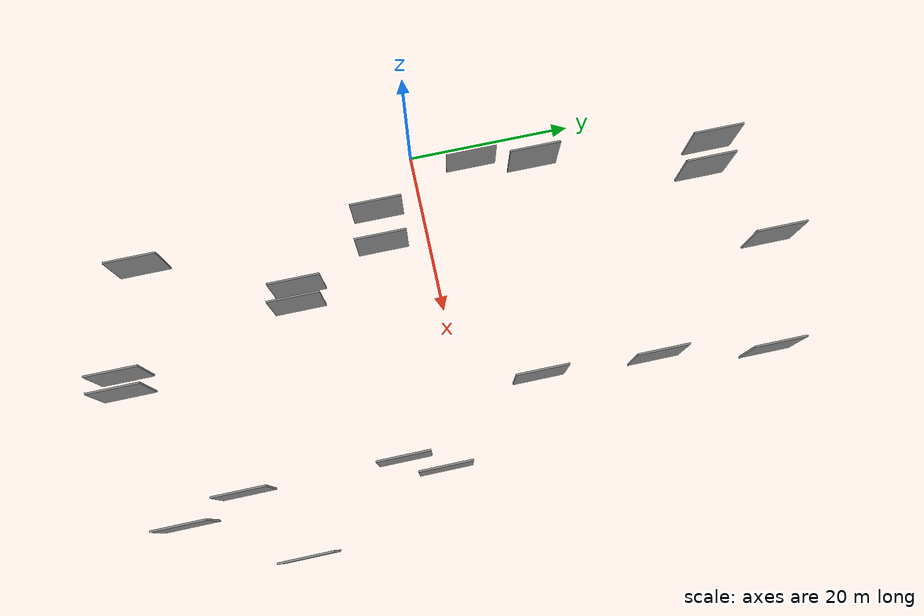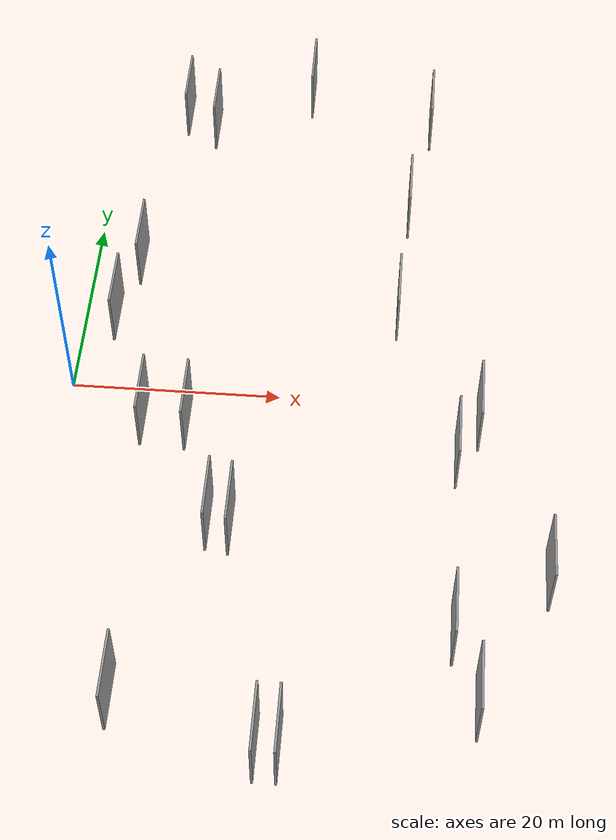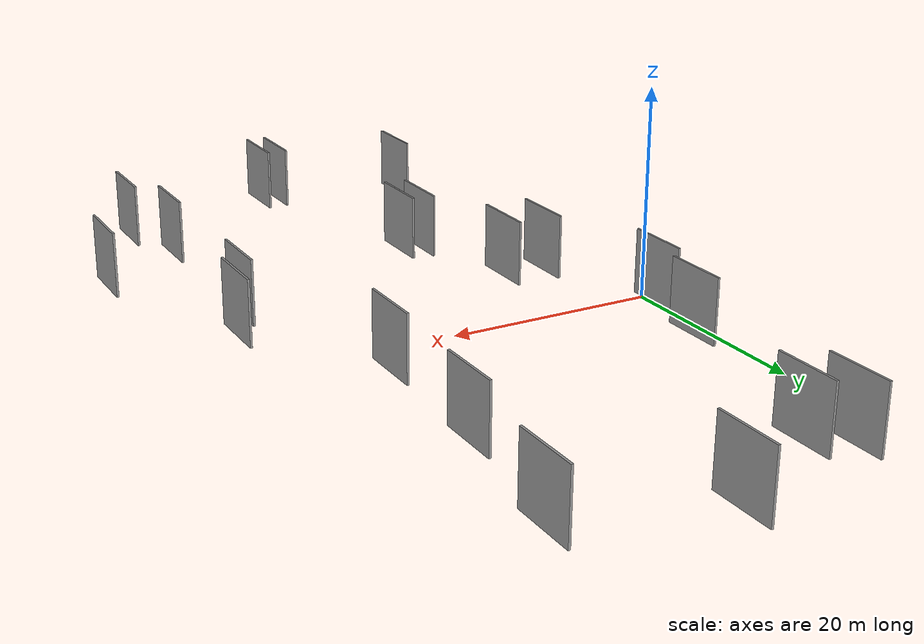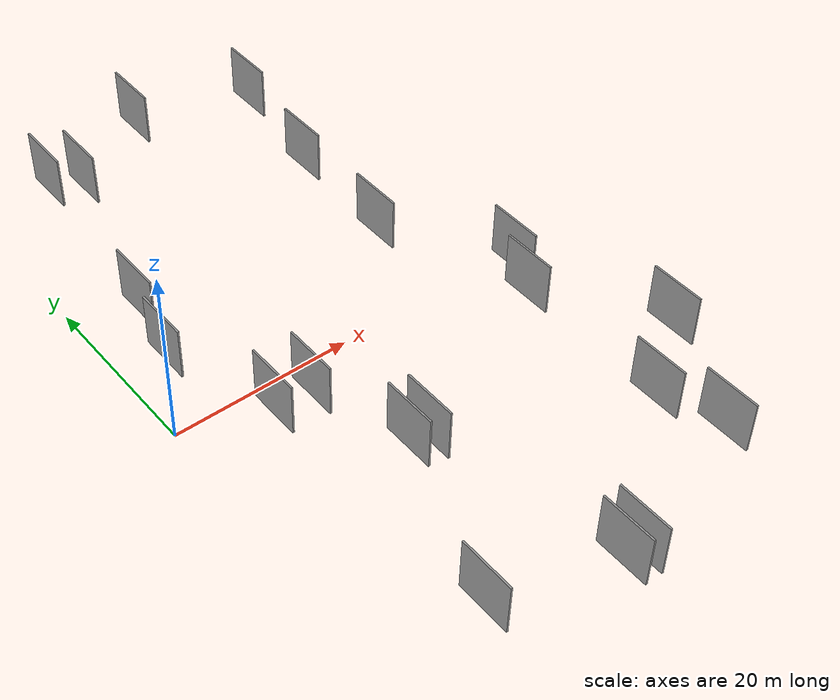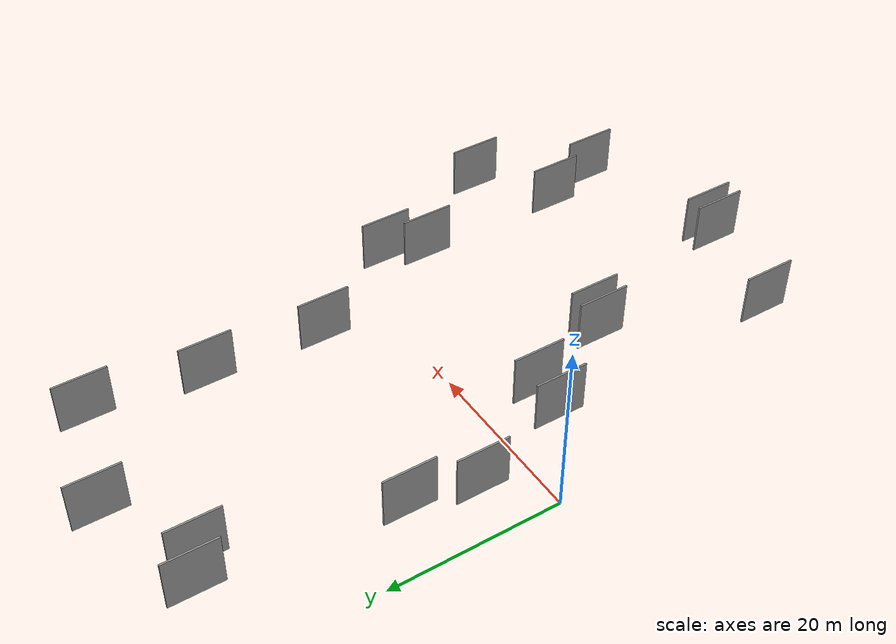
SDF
<sdf version="1.6">
 <world name="default">
  <scene>
   <sky><clouds><speed>12</speed></clouds></sky>
   <ambient>0.4 0.4 0.4 1</ambient>
   <background>0.7 0.7 0.7 1</background>
   <shadows>1</shadows>
  </scene>
  <gravity>0 0 -9.8066</gravity>
  <magnetic_field>6e-06 2.3e-05 -4.2e-05</magnetic_field>
  <physics default="0" name="default_physics" type="ode">
   <ode>
    <solver>
     <type>quick</type>
     <iters>10</iters>
     <sor>1.0</sor>
     <use_dynamic_moi_rescaling>0</use_dynamic_moi_rescaling>
    </solver>
    <constraints>
     <cfm>0</cfm>
     <erp>0.2</erp>
     <contact_max_correcting_vel>100</contact_max_correcting_vel>
     <contact_surface_layer>0.001</contact_surface_layer>
    </constraints>
   </ode>
   <max_step_size>0.004</max_step_size>
   <real_time_factor>1</real_time_factor>
   <real_time_update_rate>250</real_time_update_rate>
  </physics>
  <light name="sun" type="directional">
   <pose>0 0 10 0 0 0</pose>
   <diffuse>0.8 0.8 0.8 1</diffuse>
   <specular>0.2 0.2 0.2 1</specular>
   <attenuation>
    <range>1000</range>
    <constant>0.9</constant>
    <linear>0.01</linear>
    <quadratic>0.001</quadratic>
   </attenuation>
   <direction>-0.5 0.1 -0.9</direction>
  </light>
  <model name="grey_wall_1">
   <static>1</static>
   <pose>44.8680 -19.7840 2.5 0.000000 0.000000 1.570796</pose>
   <link name="link">
    <pose>0 0 3.00 0 0 0</pose>
    <collision name="collision"><geometry><box><size>6.00 0.2 6.00</size></box></geometry></collision>
    <visual name="visual">
     <cast_shadows>0</cast_shadows>
     <geometry><box><size>6.00 0.2 6.00</size></box></geometry>
     <material>
      <script>
       <uri>model://grey_wall/materials/scripts</uri>
       <uri>model://grey_wall/materials/textures</uri>
       <name>vrc/grey_wall</name>
      </script>
     </material>
    </visual>
   </link>
  </model>
  <model name="grey_wall_2">
   <static>1</static>
   <pose>23.0405 -37.1737 2.5 0.000000 0.000000 1.570796</pose>
   <link name="link">
    <pose>0 0 3.00 0 0 0</pose>
    <collision name="collision"><geometry><box><size>6.00 0.2 6.00</size></box></geometry></collision>
    <visual name="visual">
     <cast_shadows>0</cast_shadows>
     <geometry><box><size>6.00 0.2 6.00</size></box></geometry>
     <material>
      <script>
       <uri>model://grey_wall/materials/scripts</uri>
       <uri>model://grey_wall/materials/textures</uri>
       <name>vrc/grey_wall</name>
      </script>
     </material>
    </visual>
   </link>
  </model>
  <model name="grey_wall_3">
   <static>1</static>
   <pose>8.7459 -33.5266 2.5 0.000000 0.000000 1.570796</pose>
   <link name="link">
    <pose>0 0 3.00 0 0 0</pose>
    <collision name="collision"><geometry><box><size>6.00 0.2 6.00</size></box></geometry></collision>
    <visual name="visual">
     <cast_shadows>0</cast_shadows>
     <geometry><box><size>6.00 0.2 6.00</size></box></geometry>
     <material>
      <script>
       <uri>model://grey_wall/materials/scripts</uri>
       <uri>model://grey_wall/materials/textures</uri>
       <name>vrc/grey_wall</name>
      </script>
     </material>
    </visual>
   </link>
  </model>
  <model name="grey_wall_4">
   <static>1</static>
   <pose>36.7471 -25.5950 2.5 0.000000 0.000000 1.570796</pose>
   <link name="link">
    <pose>0 0 3.00 0 0 0</pose>
    <collision name="collision"><geometry><box><size>6.00 0.2 6.00</size></box></geometry></collision>
    <visual name="visual">
     <cast_shadows>0</cast_shadows>
     <geometry><box><size>6.00 0.2 6.00</size></box></geometry>
     <material>
      <script>
       <uri>model://grey_wall/materials/scripts</uri>
       <uri>model://grey_wall/materials/textures</uri>
       <name>vrc/grey_wall</name>
      </script>
     </material>
    </visual>
   </link>
  </model>
  <model name="grey_wall_5">
   <static>1</static>
   <pose>17.0178 -16.3620 2.5 0.000000 0.000000 1.570796</pose>
   <link name="link">
    <pose>0 0 3.00 0 0 0</pose>
    <collision name="collision"><geometry><box><size>6.00 0.2 6.00</size></box></geometry></collision>
    <visual name="visual">
     <cast_shadows>0</cast_shadows>
     <geometry><box><size>6.00 0.2 6.00</size></box></geometry>
     <material>
      <script>
       <uri>model://grey_wall/materials/scripts</uri>
       <uri>model://grey_wall/materials/textures</uri>
       <name>vrc/grey_wall</name>
      </script>
     </material>
    </visual>
   </link>
  </model>
  <model name="grey_wall_6">
   <static>1</static>
   <pose>7.4429 35.3825 2.5 0.000000 0.000000 1.570796</pose>
   <link name="link">
    <pose>0 0 3.00 0 0 0</pose>
    <collision name="collision"><geometry><box><size>6.00 0.2 6.00</size></box></geometry></collision>
    <visual name="visual">
     <cast_shadows>0</cast_shadows>
     <geometry><box><size>6.00 0.2 6.00</size></box></geometry>
     <material>
      <script>
       <uri>model://grey_wall/materials/scripts</uri>
       <uri>model://grey_wall/materials/textures</uri>
       <name>vrc/grey_wall</name>
      </script>
     </material>
    </visual>
   </link>
  </model>
  <model name="grey_wall_7">
   <static>1</static>
   <pose>11.8801 -5.5077 2.5 0.000000 0.000000 1.570796</pose>
   <link name="link">
    <pose>0 0 3.00 0 0 0</pose>
    <collision name="collision"><geometry><box><size>6.00 0.2 6.00</size></box></geometry></collision>
    <visual name="visual">
     <cast_shadows>0</cast_shadows>
     <geometry><box><size>6.00 0.2 6.00</size></box></geometry>
     <material>
      <script>
       <uri>model://grey_wall/materials/scripts</uri>
       <uri>model://grey_wall/materials/textures</uri>
       <name>vrc/grey_wall</name>
      </script>
     </material>
    </visual>
   </link>
  </model>
  <model name="grey_wall_8">
   <static>1</static>
   <pose>5.1697 14.0634 2.5 0.000000 0.000000 1.570796</pose>
   <link name="link">
    <pose>0 0 3.00 0 0 0</pose>
    <collision name="collision"><geometry><box><size>6.00 0.2 6.00</size></box></geometry></collision>
    <visual name="visual">
     <cast_shadows>0</cast_shadows>
     <geometry><box><size>6.00 0.2 6.00</size></box></geometry>
     <material>
      <script>
       <uri>model://grey_wall/materials/scripts</uri>
       <uri>model://grey_wall/materials/textures</uri>
       <name>vrc/grey_wall</name>
      </script>
     </material>
    </visual>
   </link>
  </model>
  <model name="grey_wall_9">
   <static>1</static>
   <pose>7.7585 -5.2810 2.5 0.000000 0.000000 1.570796</pose>
   <link name="link">
    <pose>0 0 3.00 0 0 0</pose>
    <collision name="collision"><geometry><box><size>6.00 0.2 6.00</size></box></geometry></collision>
    <visual name="visual">
     <cast_shadows>0</cast_shadows>
     <geometry><box><size>6.00 0.2 6.00</size></box></geometry>
     <material>
      <script>
       <uri>model://grey_wall/materials/scripts</uri>
       <uri>model://grey_wall/materials/textures</uri>
       <name>vrc/grey_wall</name>
      </script>
     </material>
    </visual>
   </link>
  </model>
  <model name="grey_wall_10">
   <static>1</static>
   <pose>38.8941 -32.2576 2.5 0.000000 0.000000 1.570796</pose>
   <link name="link">
    <pose>0 0 3.00 0 0 0</pose>
    <collision name="collision"><geometry><box><size>6.00 0.2 6.00</size></box></geometry></collision>
    <visual name="visual">
     <cast_shadows>0</cast_shadows>
     <geometry><box><size>6.00 0.2 6.00</size></box></geometry>
     <material>
      <script>
       <uri>model://grey_wall/materials/scripts</uri>
       <uri>model://grey_wall/materials/textures</uri>
       <name>vrc/grey_wall</name>
      </script>
     </material>
    </visual>
   </link>
  </model>
  <model name="grey_wall_11">
   <static>1</static>
   <pose>36.7300 -7.8213 2.5 0.000000 0.000000 1.570796</pose>
   <link name="link">
    <pose>0 0 3.00 0 0 0</pose>
    <collision name="collision"><geometry><box><size>6.00 0.2 6.00</size></box></geometry></collision>
    <visual name="visual">
     <cast_shadows>0</cast_shadows>
     <geometry><box><size>6.00 0.2 6.00</size></box></geometry>
     <material>
      <script>
       <uri>model://grey_wall/materials/scripts</uri>
       <uri>model://grey_wall/materials/textures</uri>
       <name>vrc/grey_wall</name>
      </script>
     </material>
    </visual>
   </link>
  </model>
  <model name="grey_wall_12">
   <static>1</static>
   <pose>30.7591 8.8568 2.5 0.000000 0.000000 1.570796</pose>
   <link name="link">
    <pose>0 0 3.00 0 0 0</pose>
    <collision name="collision"><geometry><box><size>6.00 0.2 6.00</size></box></geometry></collision>
    <visual name="visual">
     <cast_shadows>0</cast_shadows>
     <geometry><box><size>6.00 0.2 6.00</size></box></geometry>
     <material>
      <script>
       <uri>model://grey_wall/materials/scripts</uri>
       <uri>model://grey_wall/materials/textures</uri>
       <name>vrc/grey_wall</name>
      </script>
     </material>
    </visual>
   </link>
  </model>
  <model name="grey_wall_13">
   <static>1</static>
   <pose>3.6218 6.8292 2.5 0.000000 0.000000 1.570796</pose>
   <link name="link">
    <pose>0 0 3.00 0 0 0</pose>
    <collision name="collision"><geometry><box><size>6.00 0.2 6.00</size></box></geometry></collision>
    <visual name="visual">
     <cast_shadows>0</cast_shadows>
     <geometry><box><size>6.00 0.2 6.00</size></box></geometry>
     <material>
      <script>
       <uri>model://grey_wall/materials/scripts</uri>
       <uri>model://grey_wall/materials/textures</uri>
       <name>vrc/grey_wall</name>
      </script>
     </material>
    </visual>
   </link>
  </model>
  <model name="grey_wall_14">
   <static>1</static>
   <pose>21.1207 -37.1727 2.5 0.000000 0.000000 1.570796</pose>
   <link name="link">
    <pose>0 0 3.00 0 0 0</pose>
    <collision name="collision"><geometry><box><size>6.00 0.2 6.00</size></box></geometry></collision>
    <visual name="visual">
     <cast_shadows>0</cast_shadows>
     <geometry><box><size>6.00 0.2 6.00</size></box></geometry>
     <material>
      <script>
       <uri>model://grey_wall/materials/scripts</uri>
       <uri>model://grey_wall/materials/textures</uri>
       <name>vrc/grey_wall</name>
      </script>
     </material>
    </visual>
   </link>
  </model>
  <model name="grey_wall_15">
   <static>1</static>
   <pose>31.3482 22.2937 2.5 0.000000 0.000000 1.570796</pose>
   <link name="link">
    <pose>0 0 3.00 0 0 0</pose>
    <collision name="collision"><geometry><box><size>6.00 0.2 6.00</size></box></geometry></collision>
    <visual name="visual">
     <cast_shadows>0</cast_shadows>
     <geometry><box><size>6.00 0.2 6.00</size></box></geometry>
     <material>
      <script>
       <uri>model://grey_wall/materials/scripts</uri>
       <uri>model://grey_wall/materials/textures</uri>
       <name>vrc/grey_wall</name>
      </script>
     </material>
    </visual>
   </link>
  </model>
  <model name="grey_wall_16">
   <static>1</static>
   <pose>10.5894 33.6070 2.5 0.000000 0.000000 1.570796</pose>
   <link name="link">
    <pose>0 0 3.00 0 0 0</pose>
    <collision name="collision"><geometry><box><size>6.00 0.2 6.00</size></box></geometry></collision>
    <visual name="visual">
     <cast_shadows>0</cast_shadows>
     <geometry><box><size>6.00 0.2 6.00</size></box></geometry>
     <material>
      <script>
       <uri>model://grey_wall/materials/scripts</uri>
       <uri>model://grey_wall/materials/textures</uri>
       <name>vrc/grey_wall</name>
      </script>
     </material>
    </visual>
   </link>
  </model>
  <model name="grey_wall_17">
   <static>1</static>
   <pose>33.1871 35.1069 2.5 0.000000 0.000000 1.570796</pose>
   <link name="link">
    <pose>0 0 3.00 0 0 0</pose>
    <collision name="collision"><geometry><box><size>6.00 0.2 6.00</size></box></geometry></collision>
    <visual name="visual">
     <cast_shadows>0</cast_shadows>
     <geometry><box><size>6.00 0.2 6.00</size></box></geometry>
     <material>
      <script>
       <uri>model://grey_wall/materials/scripts</uri>
       <uri>model://grey_wall/materials/textures</uri>
       <name>vrc/grey_wall</name>
      </script>
     </material>
    </visual>
   </link>
  </model>
  <model name="grey_wall_18">
   <static>1</static>
   <pose>38.6965 -3.5997 2.5 0.000000 0.000000 1.570796</pose>
   <link name="link">
    <pose>0 0 3.00 0 0 0</pose>
    <collision name="collision"><geometry><box><size>6.00 0.2 6.00</size></box></geometry></collision>
    <visual name="visual">
     <cast_shadows>0</cast_shadows>
     <geometry><box><size>6.00 0.2 6.00</size></box></geometry>
     <material>
      <script>
       <uri>model://grey_wall/materials/scripts</uri>
       <uri>model://grey_wall/materials/textures</uri>
       <name>vrc/grey_wall</name>
      </script>
     </material>
    </visual>
   </link>
  </model>
  <model name="grey_wall_19">
   <static>1</static>
   <pose>20.4399 39.1008 2.5 0.000000 0.000000 1.570796</pose>
   <link name="link">
    <pose>0 0 3.00 0 0 0</pose>
    <collision name="collision"><geometry><box><size>6.00 0.2 6.00</size></box></geometry></collision>
    <visual name="visual">
     <cast_shadows>0</cast_shadows>
     <geometry><box><size>6.00 0.2 6.00</size></box></geometry>
     <material>
      <script>
       <uri>model://grey_wall/materials/scripts</uri>
       <uri>model://grey_wall/materials/textures</uri>
       <name>vrc/grey_wall</name>
      </script>
     </material>
    </visual>
   </link>
  </model>
  <model name="grey_wall_20">
   <static>1</static>
   <pose>14.9909 -16.0042 2.5 0.000000 0.000000 1.570796</pose>
   <link name="link">
    <pose>0 0 3.00 0 0 0</pose>
    <collision name="collision"><geometry><box><size>6.00 0.2 6.00</size></box></geometry></collision>
    <visual name="visual">
     <cast_shadows>0</cast_shadows>
     <geometry><box><size>6.00 0.2 6.00</size></box></geometry>
     <material>
      <script>
       <uri>model://grey_wall/materials/scripts</uri>
       <uri>model://grey_wall/materials/textures</uri>
       <name>vrc/grey_wall</name>
      </script>
     </material>
    </visual>
   </link>
  </model>
 </world>
</sdf>
